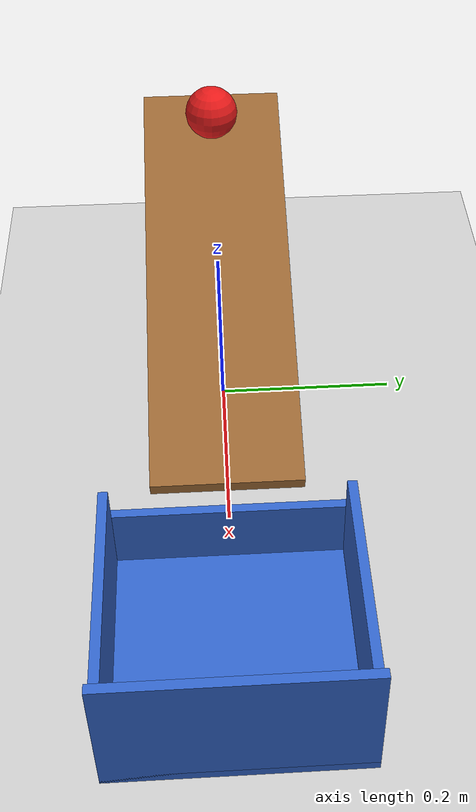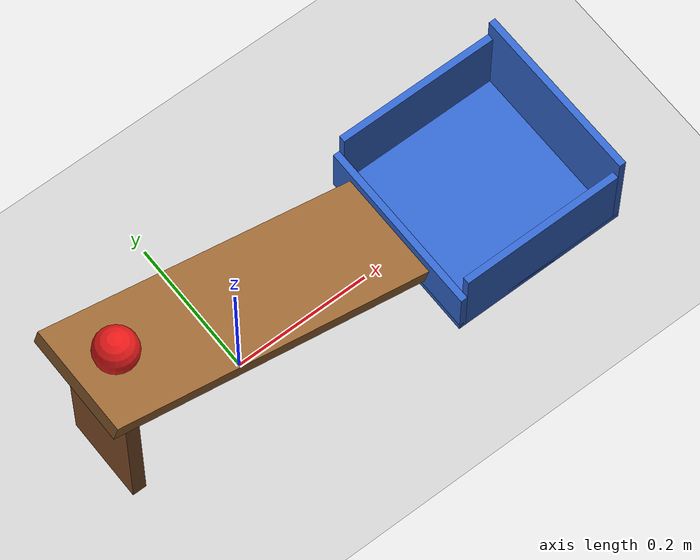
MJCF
<mujoco model="ball_ramp_cup">
  <option timestep="0.002" gravity="0 0 -9.81"/>
  <visual>
    <global offwidth="1280" offheight="720"/>
  </visual>
  <worldbody>
    <light name="sun" pos="0 0 2" dir="0 0 -1" directional="true"/>
    <geom name="floor" type="plane" size="2 2 0.1" rgba="0.8 0.8 0.8 1"/>

    <geom name="ramp_board" type="box" pos="0 0 0.176" euler="0 20 0" size="0.25 0.08 0.01" rgba="0.6 0.4 0.2 1"/>
    <geom name="ramp_leg" type="box" pos="-0.2 0 0.119" size="0.01 0.06 0.119" rgba="0.5 0.3 0.15 1"/>

    <body name="cup" pos="0.38 0 0">
      <geom name="cup_bottom" type="box" pos="0 0 0.005" size="0.13 0.13 0.005" rgba="0.2 0.4 0.8 1"/>
      <geom name="cup_wall_near" type="box" pos="-0.125 0 0.04" size="0.005 0.13 0.04" rgba="0.2 0.4 0.8 1"/>
      <geom name="cup_wall_far" type="box" pos="0.125 0 0.075" size="0.005 0.13 0.075" rgba="0.2 0.4 0.8 1"/>
      <geom name="cup_wall_left" type="box" pos="0 0.125 0.06" size="0.12 0.005 0.06" rgba="0.2 0.4 0.8 1"/>
      <geom name="cup_wall_right" type="box" pos="0 -0.125 0.06" size="0.12 0.005 0.06" rgba="0.2 0.4 0.8 1"/>
    </body>

    <body name="ball" pos="-0.1743 0 0.282">
      <freejoint name="ball_free"/>
      <geom name="ball" type="sphere" size="0.03" density="1000" condim="6" friction="1 0.005 0.003" rgba="0.9 0.1 0.1 1"/>
    </body>
  </worldbody>
  <keyframe>
    <key name="start" qpos="-0.1743 0 0.282 1 0 0 0" qvel="0 0 0 0 0 0"/>
  </keyframe>
</mujoco>
